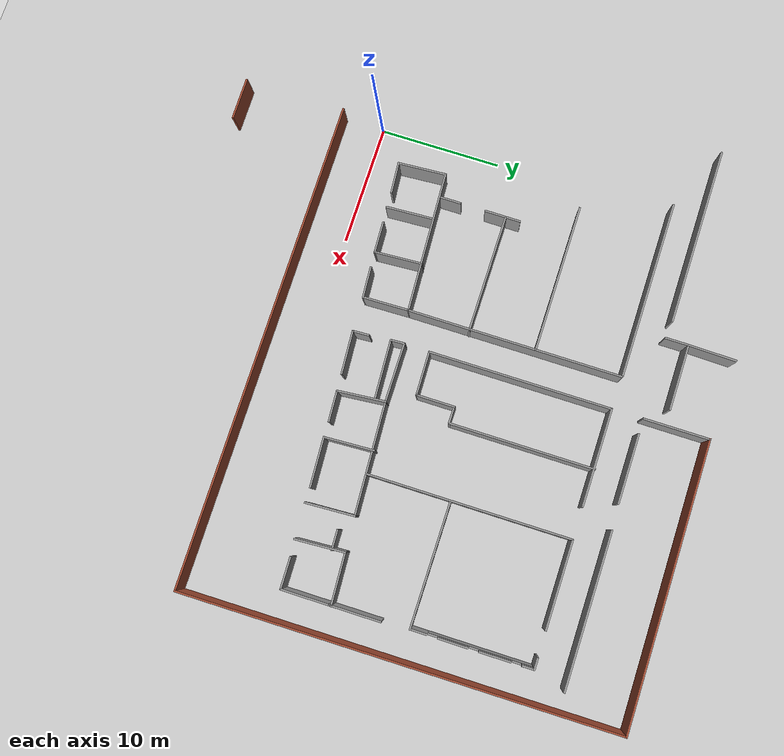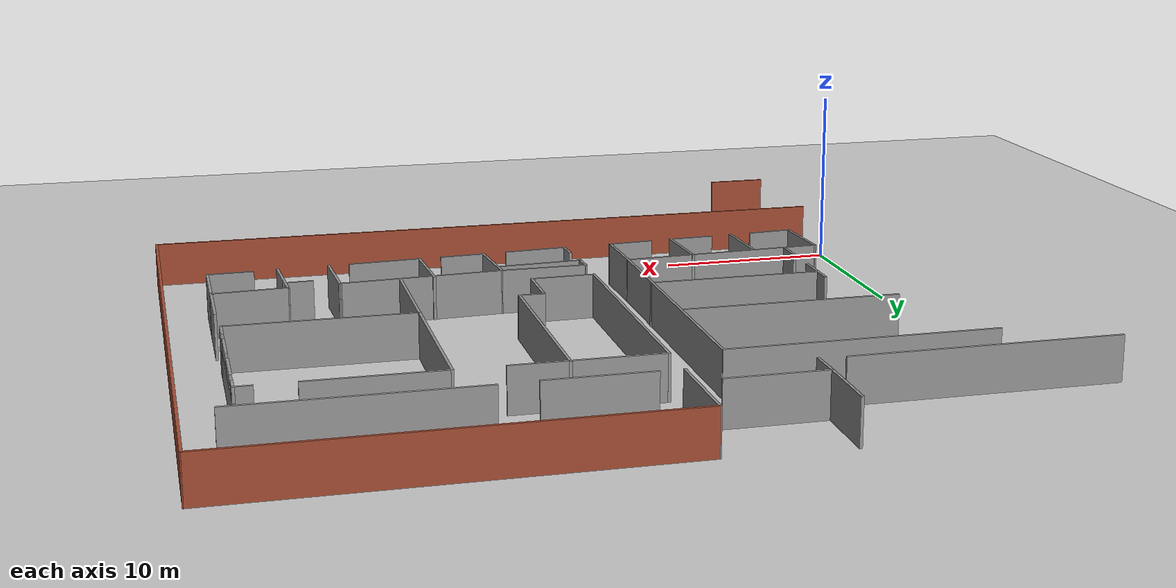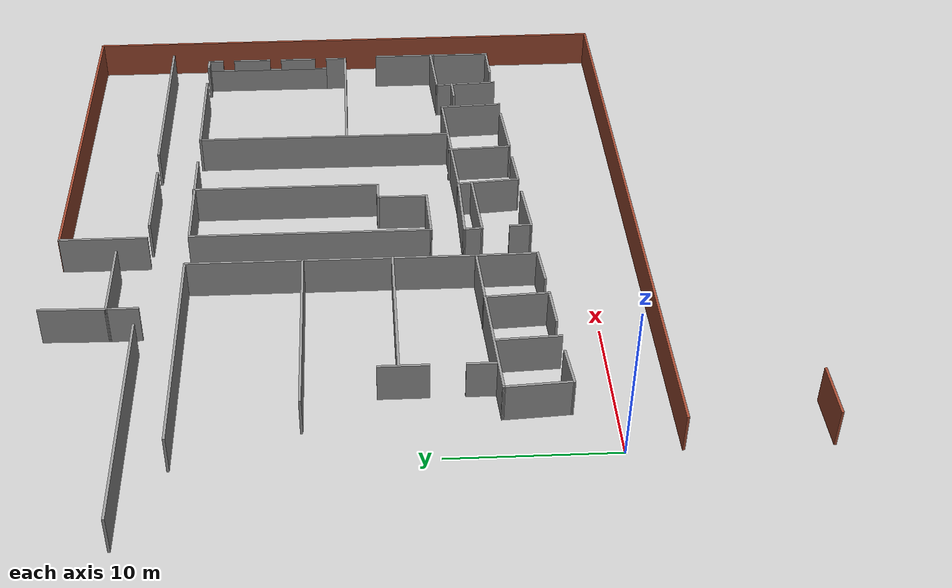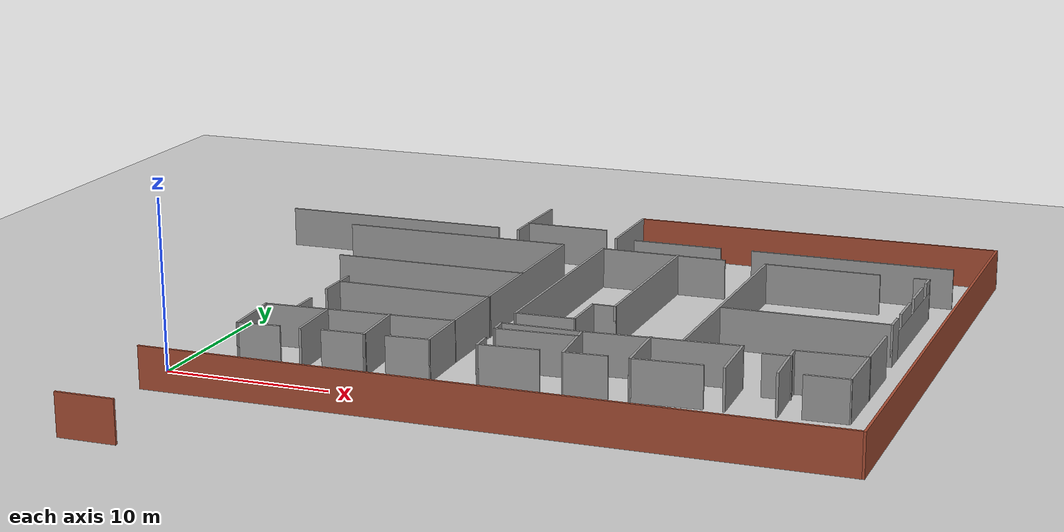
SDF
<sdf version="1.7">
 <world name="default">
  <model name="ground_plane">
   <static>1</static>
   <link name="link">
    <collision name="collision">
     <geometry><plane><normal>0 0 1</normal><size>100 100</size></plane></geometry>
     <surface><friction><ode><mu>100</mu><mu2>50</mu2></ode></friction></surface>
    </collision>
    <visual name="visual">
     <cast_shadows>0</cast_shadows>
     <geometry><plane><normal>0 0 1</normal><size>100 100</size></plane></geometry>
     <material>
      <script><uri>file://media/materials/scripts/gazebo.material</uri><name>Gazebo/Grey</name></script>
     </material>
    </visual>
   </link>
  </model>
  <model name="Sherman_ground">
   <pose>-0.396386 10.2382 0 0 -0 0</pose>
   <link name="Wall_0">
    <collision name="Wall_0_Collision">
     <geometry><box><size>17.75 0.15 2.5</size></box></geometry>
     <pose>0 0 1.25 0 -0 0</pose>
    </collision>
    <visual name="Wall_0_Visual">
     <pose>0 0 1.25 0 -0 0</pose>
     <geometry><box><size>17.75 0.15 2.5</size></box></geometry>
     <material>
      <script><uri>file://media/materials/scripts/gazebo.material</uri><name>Gazebo/Grey</name></script>
      <ambient>1 1 1 1</ambient>
     </material>
     <meta><layer>0</layer></meta>
    </visual>
    <pose>14.8884 5.63839 0 0 -0 -1.5708</pose>
   </link>
   <link name="Wall_10">
    <collision name="Wall_10_Collision">
     <geometry><box><size>16.75 0.15 2.5</size></box></geometry>
     <pose>0 0 1.25 0 -0 0</pose>
    </collision>
    <visual name="Wall_10_Visual">
     <pose>0 0 1.25 0 -0 0</pose>
     <geometry><box><size>16.75 0.15 2.5</size></box></geometry>
     <material>
      <script><uri>file://media/materials/scripts/gazebo.material</uri><name>Gazebo/Grey</name></script>
      <ambient>1 1 1 1</ambient>
     </material>
     <meta><layer>0</layer></meta>
    </visual>
    <pose>28.1802 6.12092 0 0 -0 -1.5708</pose>
   </link>
   <link name="Wall_100">
    <collision name="Wall_100_Collision">
     <geometry><box><size>12 0.15 2.5</size></box></geometry>
     <pose>0 0 1.25 0 -0 0</pose>
    </collision>
    <visual name="Wall_100_Visual">
     <pose>0 0 1.25 0 -0 0</pose>
     <geometry><box><size>12 0.15 2.5</size></box></geometry>
     <material>
      <script><uri>file://media/materials/scripts/gazebo.material</uri><name>Gazebo/Grey</name></script>
      <ambient>1 1 1 1</ambient>
     </material>
     <meta><layer>0</layer></meta>
    </visual>
    <pose>22.4926 8.56716 0 0 -0 -1.5708</pose>
   </link>
   <link name="Wall_101">
    <collision name="Wall_101_Collision">
     <geometry><box><size>1.5 0.15 2.5</size></box></geometry>
     <pose>0 0 1.25 0 -0 0</pose>
    </collision>
    <visual name="Wall_101_Visual">
     <pose>0 0 1.25 0 -0 0</pose>
     <geometry><box><size>1.5 0.15 2.5</size></box></geometry>
     <material>
      <script><uri>file://media/materials/scripts/gazebo.material</uri><name>Gazebo/Grey</name></script>
      <ambient>1 1 1 1</ambient>
     </material>
     <meta><layer>0</layer></meta>
    </visual>
    <pose>21.8176 2.64216 0 0 -0 3.14159</pose>
   </link>
   <link name="Wall_104">
    <collision name="Wall_104_Collision">
     <geometry><box><size>3.25 0.15 2.5</size></box></geometry>
     <pose>0 0 1.25 0 -0 0</pose>
    </collision>
    <visual name="Wall_104_Visual">
     <pose>0 0 1.25 0 -0 0</pose>
     <geometry><box><size>3.25 0.15 2.5</size></box></geometry>
     <material>
      <script><uri>file://media/materials/scripts/gazebo.material</uri><name>Gazebo/Grey</name></script>
      <ambient>1 1 1 1</ambient>
     </material>
     <meta><layer>0</layer></meta>
    </visual>
    <pose>21.1426 1.09216 0 0 -0 -1.5708</pose>
   </link>
   <link name="Wall_105">
    <collision name="Wall_105_Collision">
     <geometry><box><size>3.7132 0.15 2.5</size></box></geometry>
     <pose>0 0 1.25 0 -0 0</pose>
    </collision>
    <visual name="Wall_105_Visual">
     <pose>0 0 1.25 0 -0 0</pose>
     <geometry><box><size>3.7132 0.15 2.5</size></box></geometry>
     <material>
      <script><uri>file://media/materials/scripts/gazebo.material</uri><name>Gazebo/Grey</name></script>
      <ambient>1 1 1 1</ambient>
     </material>
     <meta><layer>0</layer></meta>
    </visual>
    <pose>19.3617 -0.507777 0 0 -0 -3.11356</pose>
   </link>
   <link name="Wall_12">
    <collision name="Wall_12_Collision">
     <geometry><box><size>10.25 0.15 2.5</size></box></geometry>
     <pose>0 0 1.25 0 -0 0</pose>
    </collision>
    <visual name="Wall_12_Visual">
     <pose>0 0 1.25 0 -0 0</pose>
     <geometry><box><size>10.25 0.15 2.5</size></box></geometry>
     <material>
      <script><uri>file://media/materials/scripts/gazebo.material</uri><name>Gazebo/Grey</name></script>
      <ambient>1 1 1 1</ambient>
     </material>
     <meta><layer>0</layer></meta>
    </visual>
    <pose>33.2707 4.59021 0 0 -0 0</pose>
   </link>
   <link name="Wall_13">
    <pose>38.3207 9.51521 0 0 -0 1.5708</pose>
    <visual name="Wall_13_Visual_0">
     <pose>-4.27248 0 1.25 0 -0 0</pose>
     <geometry><box><size>1.45504 0.15 2.5</size></box></geometry>
     <material>
      <script><uri>file://media/materials/scripts/gazebo.material</uri><name>Gazebo/Grey</name></script>
      <ambient>1 1 1 1</ambient>
     </material>
     <meta><layer>0</layer></meta>
    </visual>
    <collision name="Wall_13_Collision_0">
     <geometry><box><size>1.45504 0.15 2.5</size></box></geometry>
     <pose>-4.27248 0 1.25 0 -0 0</pose>
    </collision>
    <visual name="Wall_13_Visual_1">
     <pose>0.727523 0 0.85 0 -0 0</pose>
     <geometry><box><size>8.54495 0.15 1.7</size></box></geometry>
     <material>
      <script><uri>file://media/materials/scripts/gazebo.material</uri><name>Gazebo/Grey</name></script>
      <ambient>1 1 1 1</ambient>
     </material>
     <meta><layer>0</layer></meta>
    </visual>
    <collision name="Wall_13_Collision_1">
     <geometry><box><size>8.54495 0.15 1.7</size></box></geometry>
     <pose>0.727523 0 0.85 0 -0 0</pose>
    </collision>
    <visual name="Wall_13_Visual_2">
     <pose>-1.5065 0 2.1 0 -0 0</pose>
     <geometry><box><size>2.4769 0.15 0.8</size></box></geometry>
     <material>
      <script><uri>file://media/materials/scripts/gazebo.material</uri><name>Gazebo/Grey</name></script>
      <ambient>1 1 1 1</ambient>
     </material>
     <meta><layer>0</layer></meta>
    </visual>
    <collision name="Wall_13_Collision_2">
     <geometry><box><size>2.4769 0.15 0.8</size></box></geometry>
     <pose>-1.5065 0 2.1 0 -0 0</pose>
    </collision>
    <visual name="Wall_13_Visual_3">
     <pose>1.83108 0 2.1 0 -0 0</pose>
     <geometry><box><size>2.59827 0.15 0.8</size></box></geometry>
     <material>
      <script><uri>file://media/materials/scripts/gazebo.material</uri><name>Gazebo/Grey</name></script>
      <ambient>1 1 1 1</ambient>
     </material>
     <meta><layer>0</layer></meta>
    </visual>
    <collision name="Wall_13_Collision_3">
     <geometry><box><size>2.59827 0.15 0.8</size></box></geometry>
     <pose>1.83108 0 2.1 0 -0 0</pose>
    </collision>
    <visual name="Wall_13_Visual_4">
     <pose>4.46511 0 2.1 0 -0 0</pose>
     <geometry><box><size>1.06978 0.15 0.8</size></box></geometry>
     <material>
      <script><uri>file://media/materials/scripts/gazebo.material</uri><name>Gazebo/Grey</name></script>
      <ambient>1 1 1 1</ambient>
     </material>
     <meta><layer>0</layer></meta>
    </visual>
    <collision name="Wall_13_Collision_4">
     <geometry><box><size>1.06978 0.15 0.8</size></box></geometry>
     <pose>4.46511 0 2.1 0 -0 0</pose>
    </collision>
   </link>
   <link name="Wall_14">
    <collision name="Wall_14_Collision">
     <geometry><box><size>1 0.15 2.5</size></box></geometry>
     <pose>0 0 1.25 0 -0 0</pose>
    </collision>
    <visual name="Wall_14_Visual">
     <pose>0 0 1.25 0 -0 0</pose>
     <geometry><box><size>1 0.15 2.5</size></box></geometry>
     <material>
      <script><uri>file://media/materials/scripts/gazebo.material</uri><name>Gazebo/Grey</name></script>
      <ambient>1 1 1 1</ambient>
     </material>
     <meta><layer>0</layer></meta>
    </visual>
    <pose>37.8957 14.4402 0 0 -0 3.14159</pose>
   </link>
   <link name="Wall_16">
    <collision name="Wall_16_Collision">
     <geometry><box><size>7.25 0.15 2.5</size></box></geometry>
     <pose>0 0 1.25 0 -0 0</pose>
    </collision>
    <visual name="Wall_16_Visual">
     <pose>0 0 1.25 0 -0 0</pose>
     <geometry><box><size>7.25 0.15 2.5</size></box></geometry>
     <material>
      <script><uri>file://media/materials/scripts/gazebo.material</uri><name>Gazebo/Grey</name></script>
      <ambient>1 1 1 1</ambient>
     </material>
     <meta><layer>0</layer></meta>
    </visual>
    <pose>31.7302 14.4209 0 0 -0 0</pose>
   </link>
   <link name="Wall_175">
    <collision name="Wall_175_Collision">
     <geometry><box><size>14.75 0.15 2.5</size></box></geometry>
     <pose>0 0 1.25 0 -0 0</pose>
    </collision>
    <visual name="Wall_175_Visual">
     <pose>0 0 1.25 0 -0 0</pose>
     <geometry><box><size>14.75 0.15 2.5</size></box></geometry>
     <material>
      <script><uri>file://media/materials/scripts/gazebo.material</uri><name>Gazebo/Grey</name></script>
      <ambient>1 1 1 1</ambient>
     </material>
     <meta><layer>0</layer></meta>
    </visual>
    <pose>2.11161 17.0262 0 0 -0 0</pose>
   </link>
   <link name="Wall_177">
    <collision name="Wall_177_Collision">
     <geometry><box><size>2 0.15 2.5</size></box></geometry>
     <pose>0 0 1.25 0 -0 0</pose>
    </collision>
    <visual name="Wall_177_Visual">
     <pose>0 0 1.25 0 -0 0</pose>
     <geometry><box><size>2 0.15 2.5</size></box></geometry>
     <material>
      <script><uri>file://media/materials/scripts/gazebo.material</uri><name>Gazebo/Grey</name></script>
      <ambient>1 1 1 1</ambient>
     </material>
     <meta><layer>0</layer></meta>
    </visual>
    <pose>10.88 17.8437 0 0 -0 -1.5708</pose>
   </link>
   <link name="Wall_179">
    <collision name="Wall_179_Collision">
     <geometry><box><size>5.5 0.15 2.5</size></box></geometry>
     <pose>0 0 1.25 0 -0 0</pose>
    </collision>
    <visual name="Wall_179_Visual">
     <pose>0 0 1.25 0 -0 0</pose>
     <geometry><box><size>5.5 0.15 2.5</size></box></geometry>
     <material>
      <script><uri>file://media/materials/scripts/gazebo.material</uri><name>Gazebo/Grey</name></script>
      <ambient>1 1 1 1</ambient>
     </material>
     <meta><layer>0</layer></meta>
    </visual>
    <pose>13.555 18.7687 0 0 -0 0</pose>
   </link>
   <link name="Wall_18">
    <collision name="Wall_18_Collision">
     <geometry><box><size>35.9387 0.15 2.5</size></box></geometry>
     <pose>0 0 1.25 0 -0 0</pose>
    </collision>
    <visual name="Wall_18_Visual">
     <pose>0 0 1.25 0 -0 0</pose>
     <geometry><box><size>35.9387 0.15 2.5</size></box></geometry>
     <material>
      <script><uri>file://media/materials/scripts/gazebo.material</uri><name>Gazebo/Bricks</name></script>
      <ambient>1 1 1 1</ambient>
     </material>
     <meta><layer>0</layer></meta>
    </visual>
    <pose>40.9852 4.53689 0 0 -0 -1.56736</pose>
   </link>
   <link name="Wall_181">
    <collision name="Wall_181_Collision">
     <geometry><box><size>5.5 0.15 2.5</size></box></geometry>
     <pose>0 0 1.25 0 -0 0</pose>
    </collision>
    <visual name="Wall_181_Visual">
     <pose>0 0 1.25 0 -0 0</pose>
     <geometry><box><size>5.5 0.15 2.5</size></box></geometry>
     <material>
      <script><uri>file://media/materials/scripts/gazebo.material</uri><name>Gazebo/Grey</name></script>
      <ambient>1 1 1 1</ambient>
     </material>
     <meta><layer>0</layer></meta>
    </visual>
    <pose>17.5612 19.7122 0 0 -0 1.5708</pose>
   </link>
   <link name="Wall_183">
    <collision name="Wall_183_Collision">
     <geometry><box><size>5.75 0.15 2.5</size></box></geometry>
     <pose>0 0 1.25 0 -0 0</pose>
    </collision>
    <visual name="Wall_183_Visual">
     <pose>0 0 1.25 0 -0 0</pose>
     <geometry><box><size>5.75 0.15 2.5</size></box></geometry>
     <material>
      <script><uri>file://media/materials/scripts/gazebo.material</uri><name>Gazebo/Grey</name></script>
      <ambient>1 1 1 1</ambient>
     </material>
     <meta><layer>0</layer></meta>
    </visual>
    <pose>21.6631 16.9801 0 0 -0 0</pose>
   </link>
   <link name="Wall_185">
    <collision name="Wall_185_Collision">
     <geometry><box><size>12.75 0.15 2.5</size></box></geometry>
     <pose>0 0 1.25 0 -0 0</pose>
    </collision>
    <visual name="Wall_185_Visual">
     <pose>0 0 1.25 0 -0 0</pose>
     <geometry><box><size>12.75 0.15 2.5</size></box></geometry>
     <material>
      <script><uri>file://media/materials/scripts/gazebo.material</uri><name>Gazebo/Grey</name></script>
      <ambient>1 1 1 1</ambient>
     </material>
     <meta><layer>0</layer></meta>
    </visual>
    <pose>32.9068 17.0807 0 0 -0 0</pose>
   </link>
   <link name="Wall_187">
    <collision name="Wall_187_Collision">
     <geometry><box><size>23.5125 0.15 2.5</size></box></geometry>
     <pose>0 0 1.25 0 -0 0</pose>
    </collision>
    <visual name="Wall_187_Visual">
     <pose>0 0 1.25 0 -0 0</pose>
     <geometry><box><size>23.5125 0.15 2.5</size></box></geometry>
     <material>
      <script><uri>file://media/materials/scripts/gazebo.material</uri><name>Gazebo/Bricks</name></script>
      <ambient>1 1 1 1</ambient>
     </material>
     <meta><layer>0</layer></meta>
    </visual>
    <pose>29.2425 22.4092 0 0 -0 0.00188</pose>
   </link>
   <link name="Wall_2">
    <collision name="Wall_2_Collision">
     <geometry><box><size>14.75 0.15 2.5</size></box></geometry>
     <pose>0 0 1.25 0 -0 0</pose>
    </collision>
    <visual name="Wall_2_Visual">
     <pose>0 0 1.25 0 -0 0</pose>
     <geometry><box><size>14.75 0.15 2.5</size></box></geometry>
     <material>
      <script><uri>file://media/materials/scripts/gazebo.material</uri><name>Gazebo/Grey</name></script>
      <ambient>1 1 1 1</ambient>
     </material>
     <meta><layer>0</layer></meta>
    </visual>
    <pose>7.53881 14.5026 0 0 -0 0</pose>
   </link>
   <link name="Wall_20">
    <collision name="Wall_20_Collision">
     <geometry><box><size>40.5616 0.15 2.5</size></box></geometry>
     <pose>0 0 1.25 0 -0 0</pose>
    </collision>
    <visual name="Wall_20_Visual">
     <pose>0 0 1.25 0 -0 0</pose>
     <geometry><box><size>40.5616 0.15 2.5</size></box></geometry>
     <material>
      <script><uri>file://media/materials/scripts/gazebo.material</uri><name>Gazebo/Bricks</name></script>
      <ambient>1 1 1 1</ambient>
     </material>
     <meta><layer>0</layer></meta>
    </visual>
    <pose>20.7795 -13.3881 0 0 -0 -3.14007</pose>
   </link>
   <link name="Wall_22">
    <collision name="Wall_22_Collision">
     <geometry><box><size>4.25 0.15 2.5</size></box></geometry>
     <pose>0 0 1.25 0 -0 0</pose>
    </collision>
    <visual name="Wall_22_Visual">
     <pose>0 0 1.25 0 -0 0</pose>
     <geometry><box><size>4.25 0.15 2.5</size></box></geometry>
     <material>
      <script><uri>file://media/materials/scripts/gazebo.material</uri><name>Gazebo/Grey</name></script>
      <ambient>1 1 1 1</ambient>
     </material>
     <meta><layer>0</layer></meta>
    </visual>
    <pose>38.4787 0.237689 0 0 -0 -1.5708</pose>
   </link>
   <link name="Wall_222">
    <collision name="Wall_222_Collision">
     <geometry><box><size>3.5 0.15 2.5</size></box></geometry>
     <pose>0 0 1.25 0 -0 0</pose>
    </collision>
    <visual name="Wall_222_Visual">
     <pose>0 0 1.25 0 -0 0</pose>
     <geometry><box><size>3.5 0.15 2.5</size></box></geometry>
     <material>
      <script><uri>file://media/materials/scripts/gazebo.material</uri><name>Gazebo/Bricks</name></script>
      <ambient>1 1 1 1</ambient>
     </material>
     <meta><layer>0</layer></meta>
    </visual>
    <pose>2.24871 -21.7689 0 0 -0 0</pose>
   </link>
   <link name="Wall_23">
    <collision name="Wall_23_Collision">
     <geometry><box><size>4.06041 0.15 2.5</size></box></geometry>
     <pose>0 0 1.25 0 -0 0</pose>
    </collision>
    <visual name="Wall_23_Visual">
     <pose>0 0 1.25 0 -0 0</pose>
     <geometry><box><size>4.06041 0.15 2.5</size></box></geometry>
     <material>
      <script><uri>file://media/materials/scripts/gazebo.material</uri><name>Gazebo/Grey</name></script>
      <ambient>1 1 1 1</ambient>
     </material>
     <meta><layer>0</layer></meta>
    </visual>
    <pose>38.4787 -3.76741 0 0 -0 -1.5708</pose>
   </link>
   <link name="Wall_25">
    <collision name="Wall_25_Collision">
     <geometry><box><size>4.28693 0.15 2.5</size></box></geometry>
     <pose>0 0 1.25 0 -0 0</pose>
    </collision>
    <visual name="Wall_25_Visual">
     <pose>0 0 1.25 0 -0 0</pose>
     <geometry><box><size>4.28693 0.15 2.5</size></box></geometry>
     <material>
      <script><uri>file://media/materials/scripts/gazebo.material</uri><name>Gazebo/Grey</name></script>
      <ambient>1 1 1 1</ambient>
     </material>
     <meta><layer>0</layer></meta>
    </visual>
    <pose>36.4293 -1.78249 0 0 -0 0.05919</pose>
   </link>
   <link name="Wall_263">
    <collision name="Wall_263_Collision">
     <geometry><box><size>4.05853 0.15 2.5</size></box></geometry>
     <pose>0 0 1.25 0 -0 0</pose>
    </collision>
    <visual name="Wall_263_Visual">
     <pose>0 0 1.25 0 -0 0</pose>
     <geometry><box><size>4.05853 0.15 2.5</size></box></geometry>
     <material>
      <script><uri>file://media/materials/scripts/gazebo.material</uri><name>Gazebo/Grey</name></script>
      <ambient>1 1 1 1</ambient>
     </material>
     <meta><layer>0</layer></meta>
    </visual>
    <pose>10.9213 20.7225 0 0 -0 -1.59189</pose>
   </link>
   <link name="Wall_27">
    <collision name="Wall_27_Collision">
     <geometry><box><size>2.64387 0.15 2.5</size></box></geometry>
     <pose>0 0 1.25 0 -0 0</pose>
    </collision>
    <visual name="Wall_27_Visual">
     <pose>0 0 1.25 0 -0 0</pose>
     <geometry><box><size>2.64387 0.15 2.5</size></box></geometry>
     <material>
      <script><uri>file://media/materials/scripts/gazebo.material</uri><name>Gazebo/Grey</name></script>
      <ambient>1 1 1 1</ambient>
     </material>
     <meta><layer>0</layer></meta>
    </visual>
    <pose>37.2323 -5.75616 0 0 -0 -3.11461</pose>
   </link>
   <link name="Wall_29">
    <collision name="Wall_29_Collision">
     <geometry><box><size>4.19358 0.15 2.5</size></box></geometry>
     <pose>0 0 1.25 0 -0 0</pose>
    </collision>
    <visual name="Wall_29_Visual">
     <pose>0 0 1.25 0 -0 0</pose>
     <geometry><box><size>4.19358 0.15 2.5</size></box></geometry>
     <material>
      <script><uri>file://media/materials/scripts/gazebo.material</uri><name>Gazebo/Grey</name></script>
      <ambient>1 1 1 1</ambient>
     </material>
     <meta><layer>0</layer></meta>
    </visual>
    <pose>34.4716 -3.9238 0 0 -0 -1.51782</pose>
   </link>
   <link name="Wall_31">
    <collision name="Wall_31_Collision">
     <geometry><box><size>1.68074 0.15 2.5</size></box></geometry>
     <pose>0 0 1.25 0 -0 0</pose>
    </collision>
    <visual name="Wall_31_Visual">
     <pose>0 0 1.25 0 -0 0</pose>
     <geometry><box><size>1.68074 0.15 2.5</size></box></geometry>
     <material>
      <script><uri>file://media/materials/scripts/gazebo.material</uri><name>Gazebo/Grey</name></script>
      <ambient>1 1 1 1</ambient>
     </material>
     <meta><layer>0</layer></meta>
    </visual>
    <pose>33.7221 -2.97551 0 0 -0 0.039979</pose>
   </link>
   <link name="Wall_33">
    <collision name="Wall_33_Collision">
     <geometry><box><size>9.31125 0.15 2.5</size></box></geometry>
     <pose>0 0 1.25 0 -0 0</pose>
    </collision>
    <visual name="Wall_33_Visual">
     <pose>0 0 1.25 0 -0 0</pose>
     <geometry><box><size>9.31125 0.15 2.5</size></box></geometry>
     <material>
      <script><uri>file://media/materials/scripts/gazebo.material</uri><name>Gazebo/Grey</name></script>
      <ambient>1 1 1 1</ambient>
     </material>
     <meta><layer>0</layer></meta>
    </visual>
    <pose>26.9464 -2.34841 0 0 -0 0.056795</pose>
   </link>
   <link name="Wall_34">
    <collision name="Wall_34_Collision">
     <geometry><box><size>4.13096 0.15 2.5</size></box></geometry>
     <pose>0 0 1.25 0 -0 0</pose>
    </collision>
    <visual name="Wall_34_Visual">
     <pose>0 0 1.25 0 -0 0</pose>
     <geometry><box><size>4.13096 0.15 2.5</size></box></geometry>
     <material>
      <script><uri>file://media/materials/scripts/gazebo.material</uri><name>Gazebo/Grey</name></script>
      <ambient>1 1 1 1</ambient>
     </material>
     <meta><layer>0</layer></meta>
    </visual>
    <pose>31.6114 -4.07675 0 0 -0 -1.52468</pose>
   </link>
   <link name="Wall_36">
    <collision name="Wall_36_Collision">
     <geometry><box><size>4.19208 0.15 2.5</size></box></geometry>
     <pose>0 0 1.25 0 -0 0</pose>
    </collision>
    <visual name="Wall_36_Visual">
     <pose>0 0 1.25 0 -0 0</pose>
     <geometry><box><size>4.19208 0.15 2.5</size></box></geometry>
     <material>
      <script><uri>file://media/materials/scripts/gazebo.material</uri><name>Gazebo/Grey</name></script>
      <ambient>1 1 1 1</ambient>
     </material>
     <meta><layer>0</layer></meta>
    </visual>
    <pose>26.3804 -4.29088 0 0 -0 -1.52537</pose>
   </link>
   <link name="Wall_37">
    <collision name="Wall_37_Collision">
     <geometry><box><size>4.16479 0.15 2.5</size></box></geometry>
     <pose>0 0 1.25 0 -0 0</pose>
    </collision>
    <visual name="Wall_37_Visual">
     <pose>0 0 1.25 0 -0 0</pose>
     <geometry><box><size>4.16479 0.15 2.5</size></box></geometry>
     <material>
      <script><uri>file://media/materials/scripts/gazebo.material</uri><name>Gazebo/Grey</name></script>
      <ambient>1 1 1 1</ambient>
     </material>
     <meta><layer>0</layer></meta>
    </visual>
    <pose>28.4759 -6.18748 0 0 -0 0.060993</pose>
   </link>
   <link name="Wall_39">
    <collision name="Wall_39_Collision">
     <geometry><box><size>4.0495 0.15 2.5</size></box></geometry>
     <pose>0 0 1.25 0 -0 0</pose>
    </collision>
    <visual name="Wall_39_Visual">
     <pose>0 0 1.25 0 -0 0</pose>
     <geometry><box><size>4.0495 0.15 2.5</size></box></geometry>
     <material>
      <script><uri>file://media/materials/scripts/gazebo.material</uri><name>Gazebo/Grey</name></script>
      <ambient>1 1 1 1</ambient>
     </material>
     <meta><layer>0</layer></meta>
    </visual>
    <pose>22.5414 -4.5509 0 0 -0 -1.4844</pose>
   </link>
   <link name="Wall_40">
    <collision name="Wall_40_Collision">
     <geometry><box><size>2.60199 0.15 2.5</size></box></geometry>
     <pose>0 0 1.25 0 -0 0</pose>
    </collision>
    <visual name="Wall_40_Visual">
     <pose>0 0 1.25 0 -0 0</pose>
     <geometry><box><size>2.60199 0.15 2.5</size></box></geometry>
     <material>
      <script><uri>file://media/materials/scripts/gazebo.material</uri><name>Gazebo/Grey</name></script>
      <ambient>1 1 1 1</ambient>
     </material>
     <meta><layer>0</layer></meta>
    </visual>
    <pose>23.9332 -6.4169 0 0 -0 0.062419</pose>
   </link>
   <link name="Wall_42">
    <collision name="Wall_42_Collision">
     <geometry><box><size>4.98335 0.15 2.5</size></box></geometry>
     <pose>0 0 1.25 0 -0 0</pose>
    </collision>
    <visual name="Wall_42_Visual">
     <pose>0 0 1.25 0 -0 0</pose>
     <geometry><box><size>4.98335 0.15 2.5</size></box></geometry>
     <material>
      <script><uri>file://media/materials/scripts/gazebo.material</uri><name>Gazebo/Grey</name></script>
      <ambient>1 1 1 1</ambient>
     </material>
     <meta><layer>0</layer></meta>
    </visual>
    <pose>19.9565 -2.62372 0 0 -0 0.006329</pose>
   </link>
   <link name="Wall_44">
    <collision name="Wall_44_Collision">
     <geometry><box><size>4.99109 0.15 2.5</size></box></geometry>
     <pose>0 0 1.25 0 -0 0</pose>
    </collision>
    <visual name="Wall_44_Visual">
     <pose>0 0 1.25 0 -0 0</pose>
     <geometry><box><size>4.99109 0.15 2.5</size></box></geometry>
     <material>
      <script><uri>file://media/materials/scripts/gazebo.material</uri><name>Gazebo/Grey</name></script>
      <ambient>1 1 1 1</ambient>
     </material>
     <meta><layer>0</layer></meta>
    </visual>
    <pose>20.0177 -3.6026 0 0 -0 -3.08469</pose>
   </link>
   <link name="Wall_45">
    <collision name="Wall_45_Collision">
     <geometry><box><size>1.25295 0.15 2.5</size></box></geometry>
     <pose>0 0 1.25 0 -0 0</pose>
    </collision>
    <visual name="Wall_45_Visual">
     <pose>0 0 1.25 0 -0 0</pose>
     <geometry><box><size>1.25295 0.15 2.5</size></box></geometry>
     <material>
      <script><uri>file://media/materials/scripts/gazebo.material</uri><name>Gazebo/Grey</name></script>
      <ambient>1 1 1 1</ambient>
     </material>
     <meta><layer>0</layer></meta>
    </visual>
    <pose>17.5705 -3.18964 0 0 -0 1.6263</pose>
   </link>
   <link name="Wall_47">
    <collision name="Wall_47_Collision">
     <geometry><box><size>1.43624 0.15 2.5</size></box></geometry>
     <pose>0 0 1.25 0 -0 0</pose>
    </collision>
    <visual name="Wall_47_Visual">
     <pose>0 0 1.25 0 -0 0</pose>
     <geometry><box><size>1.43624 0.15 2.5</size></box></geometry>
     <material>
      <script><uri>file://media/materials/scripts/gazebo.material</uri><name>Gazebo/Grey</name></script>
      <ambient>1 1 1 1</ambient>
     </material>
     <meta><layer>0</layer></meta>
    </visual>
    <pose>17.7846 -6.18748 0 0 -0 -1.52321</pose>
   </link>
   <link name="Wall_48">
    <collision name="Wall_48_Collision">
     <geometry><box><size>3.64586 0.15 2.5</size></box></geometry>
     <pose>0 0 1.25 0 -0 0</pose>
    </collision>
    <visual name="Wall_48_Visual">
     <pose>0 0 1.25 0 -0 0</pose>
     <geometry><box><size>3.64586 0.15 2.5</size></box></geometry>
     <material>
      <script><uri>file://media/materials/scripts/gazebo.material</uri><name>Gazebo/Grey</name></script>
      <ambient>1 1 1 1</ambient>
     </material>
     <meta><layer>0</layer></meta>
    </visual>
    <pose>19.5588 -6.70751 0 0 -0 0.070061</pose>
   </link>
   <link name="Wall_50">
    <collision name="Wall_50_Collision">
     <geometry><box><size>11.739 0.15 2.5</size></box></geometry>
     <pose>0 0 1.25 0 -0 0</pose>
    </collision>
    <visual name="Wall_50_Visual">
     <pose>0 0 1.25 0 -0 0</pose>
     <geometry><box><size>11.739 0.15 2.5</size></box></geometry>
     <material>
      <script><uri>file://media/materials/scripts/gazebo.material</uri><name>Gazebo/Grey</name></script>
      <ambient>1 1 1 1</ambient>
     </material>
     <meta><layer>0</layer></meta>
    </visual>
    <pose>9.10193 -3.46623 0 0 -0 -3.089</pose>
   </link>
   <link name="Wall_52">
    <collision name="Wall_52_Collision">
     <geometry><box><size>3.91093 0.15 2.5</size></box></geometry>
     <pose>0 0 1.25 0 -0 0</pose>
    </collision>
    <visual name="Wall_52_Visual">
     <pose>0 0 1.25 0 -0 0</pose>
     <geometry><box><size>3.91093 0.15 2.5</size></box></geometry>
     <material>
      <script><uri>file://media/materials/scripts/gazebo.material</uri><name>Gazebo/Grey</name></script>
      <ambient>1 1 1 1</ambient>
     </material>
     <meta><layer>0</layer></meta>
    </visual>
    <pose>14.9294 -5.04163 0 0 -0 -1.54903</pose>
   </link>
   <link name="Wall_53">
    <collision name="Wall_53_Collision">
     <geometry><box><size>2.6346 0.15 2.5</size></box></geometry>
     <pose>0 0 1.25 0 -0 0</pose>
    </collision>
    <visual name="Wall_53_Visual">
     <pose>0 0 1.25 0 -0 0</pose>
     <geometry><box><size>2.6346 0.15 2.5</size></box></geometry>
     <material>
      <script><uri>file://media/materials/scripts/gazebo.material</uri><name>Gazebo/Grey</name></script>
      <ambient>1 1 1 1</ambient>
     </material>
     <meta><layer>0</layer></meta>
    </visual>
    <pose>13.7314 -7.01342 0 0 -0 -3.06765</pose>
   </link>
   <link name="Wall_55">
    <collision name="Wall_55_Collision">
     <geometry><box><size>4.01031 0.15 2.5</size></box></geometry>
     <pose>0 0 1.25 0 -0 0</pose>
    </collision>
    <visual name="Wall_55_Visual">
     <pose>0 0 1.25 0 -0 0</pose>
     <geometry><box><size>4.01031 0.15 2.5</size></box></geometry>
     <material>
      <script><uri>file://media/materials/scripts/gazebo.material</uri><name>Gazebo/Grey</name></script>
      <ambient>1 1 1 1</ambient>
     </material>
     <meta><layer>0</layer></meta>
    </visual>
    <pose>11.07 -5.26977 0 0 -0 -1.5153</pose>
   </link>
   <link name="Wall_56">
    <collision name="Wall_56_Collision">
     <geometry><box><size>2.66138 0.15 2.5</size></box></geometry>
     <pose>0 0 1.25 0 -0 0</pose>
    </collision>
    <visual name="Wall_56_Visual">
     <pose>0 0 1.25 0 -0 0</pose>
     <geometry><box><size>2.66138 0.15 2.5</size></box></geometry>
     <material>
      <script><uri>file://media/materials/scripts/gazebo.material</uri><name>Gazebo/Grey</name></script>
      <ambient>1 1 1 1</ambient>
     </material>
     <meta><layer>0</layer></meta>
    </visual>
    <pose>9.9229 -7.25814 0 0 -0 -3.09285</pose>
   </link>
   <link name="Wall_58">
    <collision name="Wall_58_Collision">
     <geometry><box><size>3.91707 0.15 2.5</size></box></geometry>
     <pose>0 0 1.25 0 -0 0</pose>
    </collision>
    <visual name="Wall_58_Visual">
     <pose>0 0 1.25 0 -0 0</pose>
     <geometry><box><size>3.91707 0.15 2.5</size></box></geometry>
     <material>
      <script><uri>file://media/materials/scripts/gazebo.material</uri><name>Gazebo/Grey</name></script>
      <ambient>1 1 1 1</ambient>
     </material>
     <meta><layer>0</layer></meta>
    </visual>
    <pose>7.26155 -5.56038 0 0 -0 -1.52205</pose>
   </link>
   <link name="Wall_6">
    <collision name="Wall_6_Collision">
     <geometry><box><size>15.1291 0.15 2.5</size></box></geometry>
     <pose>0 0 1.25 0 -0 0</pose>
    </collision>
    <visual name="Wall_6_Visual">
     <pose>0 0 1.25 0 -0 0</pose>
     <geometry><box><size>15.1291 0.15 2.5</size></box></geometry>
     <material>
      <script><uri>file://media/materials/scripts/gazebo.material</uri><name>Gazebo/Grey</name></script>
      <ambient>1 1 1 1</ambient>
     </material>
     <meta><layer>0</layer></meta>
    </visual>
    <pose>17.5808 6.9316 0 0 -0 -1.5708</pose>
   </link>
   <link name="Wall_60">
    <collision name="Wall_60_Collision">
     <geometry><box><size>4.07319 0.15 2.5</size></box></geometry>
     <pose>0 0 1.25 0 -0 0</pose>
    </collision>
    <visual name="Wall_60_Visual">
     <pose>0 0 1.25 0 -0 0</pose>
     <geometry><box><size>4.07319 0.15 2.5</size></box></geometry>
     <material>
      <script><uri>file://media/materials/scripts/gazebo.material</uri><name>Gazebo/Grey</name></script>
      <ambient>1 1 1 1</ambient>
     </material>
     <meta><layer>0</layer></meta>
    </visual>
    <pose>3.43778 -5.72863 0 0 -0 -1.50838</pose>
   </link>
   <link name="Wall_61">
    <collision name="Wall_61_Collision">
     <geometry><box><size>2.63704 0.15 2.5</size></box></geometry>
     <pose>0 0 1.25 0 -0 0</pose>
    </collision>
    <visual name="Wall_61_Visual">
     <pose>0 0 1.25 0 -0 0</pose>
     <geometry><box><size>2.63704 0.15 2.5</size></box></geometry>
     <material>
      <script><uri>file://media/materials/scripts/gazebo.material</uri><name>Gazebo/Grey</name></script>
      <ambient>1 1 1 1</ambient>
     </material>
     <meta><layer>0</layer></meta>
    </visual>
    <pose>4.79904 -7.57933 0 0 -0 0.086206</pose>
   </link>
   <link name="Wall_63">
    <collision name="Wall_63_Collision">
     <geometry><box><size>12.25 0.15 2.5</size></box></geometry>
     <pose>0 0 1.25 0 -0 0</pose>
    </collision>
    <visual name="Wall_63_Visual">
     <pose>0 0 1.25 0 -0 0</pose>
     <geometry><box><size>12.25 0.15 2.5</size></box></geometry>
     <material>
      <script><uri>file://media/materials/scripts/gazebo.material</uri><name>Gazebo/Grey</name></script>
      <ambient>1 1 1 1</ambient>
     </material>
     <meta><layer>0</layer></meta>
    </visual>
    <pose>8.81197 7.38312 0 0 -0 0</pose>
   </link>
   <link name="Wall_69">
    <collision name="Wall_69_Collision">
     <geometry><box><size>9.75 0.15 2.5</size></box></geometry>
     <pose>0 0 1.25 0 -0 0</pose>
    </collision>
    <visual name="Wall_69_Visual">
     <pose>0 0 1.25 0 -0 0</pose>
     <geometry><box><size>9.75 0.15 2.5</size></box></geometry>
     <material>
      <script><uri>file://media/materials/scripts/gazebo.material</uri><name>Gazebo/Grey</name></script>
      <ambient>1 1 1 1</ambient>
     </material>
     <meta><layer>0</layer></meta>
    </visual>
    <pose>10.13 1.92719 0 0 -0 0</pose>
   </link>
   <link name="Wall_71">
    <collision name="Wall_71_Collision">
     <geometry><box><size>3 0.15 2.5</size></box></geometry>
     <pose>0 0 1.25 0 -0 0</pose>
    </collision>
    <visual name="Wall_71_Visual">
     <pose>0 0 1.25 0 -0 0</pose>
     <geometry><box><size>3 0.15 2.5</size></box></geometry>
     <material>
      <script><uri>file://media/materials/scripts/gazebo.material</uri><name>Gazebo/Grey</name></script>
      <ambient>1 1 1 1</ambient>
     </material>
     <meta><layer>0</layer></meta>
    </visual>
    <pose>5.25966 1.66308 0 0 -0 -1.5708</pose>
   </link>
   <link name="Wall_75">
    <collision name="Wall_75_Collision">
     <geometry><box><size>1.75 0.15 2.5</size></box></geometry>
     <pose>0 0 1.25 0 -0 0</pose>
    </collision>
    <visual name="Wall_75_Visual">
     <pose>0 0 1.25 0 -0 0</pose>
     <geometry><box><size>1.75 0.15 2.5</size></box></geometry>
     <material>
      <script><uri>file://media/materials/scripts/gazebo.material</uri><name>Gazebo/Grey</name></script>
      <ambient>1 1 1 1</ambient>
     </material>
     <meta><layer>0</layer></meta>
    </visual>
    <pose>5.2603 -2.72192 0 0 -0 -1.5708</pose>
   </link>
   <link name="Wall_8">
    <collision name="Wall_8_Collision">
     <geometry><box><size>8.04046 0.15 2.5</size></box></geometry>
     <pose>0 0 1.25 0 -0 0</pose>
    </collision>
    <visual name="Wall_8_Visual">
     <pose>0 0 1.25 0 -0 0</pose>
     <geometry><box><size>8.04046 0.15 2.5</size></box></geometry>
     <material>
      <script><uri>file://media/materials/scripts/gazebo.material</uri><name>Gazebo/Grey</name></script>
      <ambient>1 1 1 1</ambient>
     </material>
     <meta><layer>0</layer></meta>
    </visual>
    <pose>21.5665 14.4209 0 0 -0 0</pose>
   </link>
   <static>1</static>
  </model>
 </world>
</sdf>
